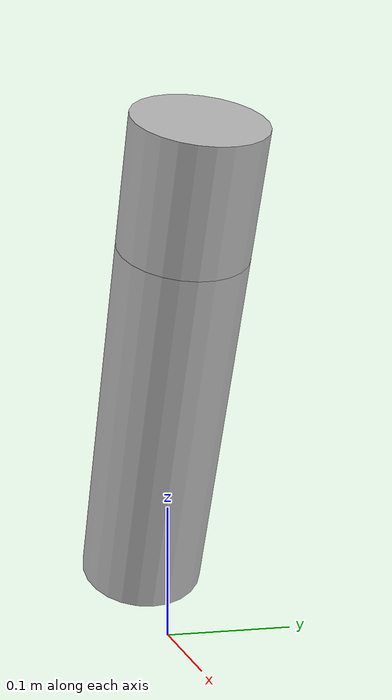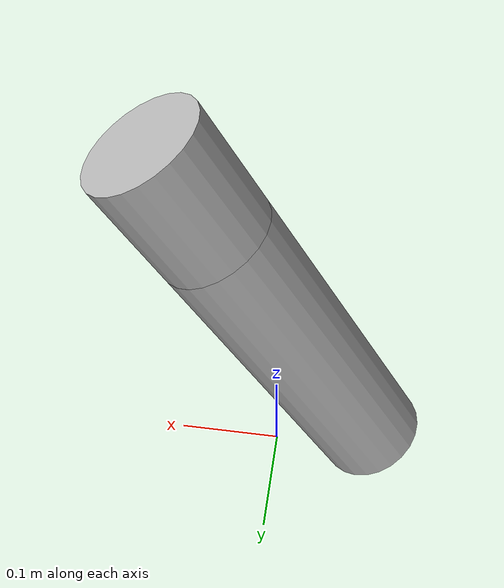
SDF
<sdf version='1.6'>
  <model name='battery'>
    <plugin name='battery' filename='libBatteryPlugin.so'>
    </plugin>

    <pose frame=''>0 0 0.21 0 0.5 0</pose>
    <link name='battery'>
      <gravity>0</gravity>
      <pose frame=''>0 0 0 0 0 0</pose>

      <visual name='body'>
        <pose frame=''>0 0 -0.05 0 -0 0</pose>
        <geometry>
          <cylinder>
              <radius>0.05</radius>
              <length>0.3</length>
          </cylinder>
        </geometry>
        <material>
          <script>
            <uri>model://battery/materials/scripts/</uri>
            <name>Battery/Body</name>
          </script>
        </material>
      </visual>

      <visual name='head'>
        <pose frame=''>0 0 0.15 0 -0 0</pose>
        <geometry>
          <cylinder>
              <radius>0.05</radius>
              <length>0.1</length>
          </cylinder>
        </geometry>
        <material>
          <script>
            <uri>model://battery/materials/scripts/</uri>
            <name>Battery/Head</name>
          </script>
        </material>
      </visual>
    </link>
  </model>
</sdf>
